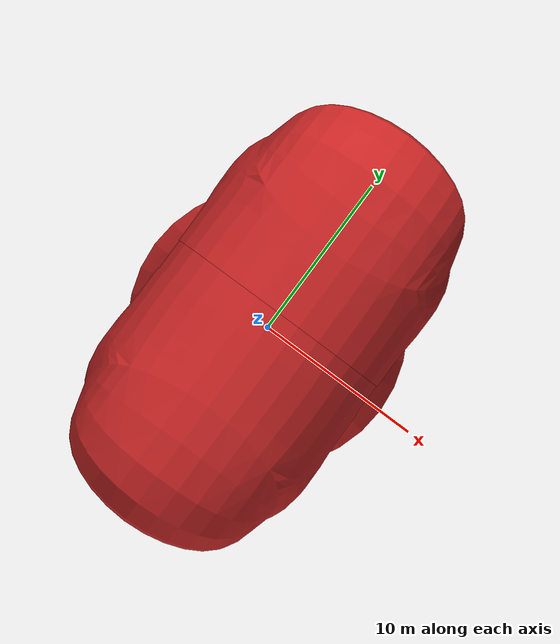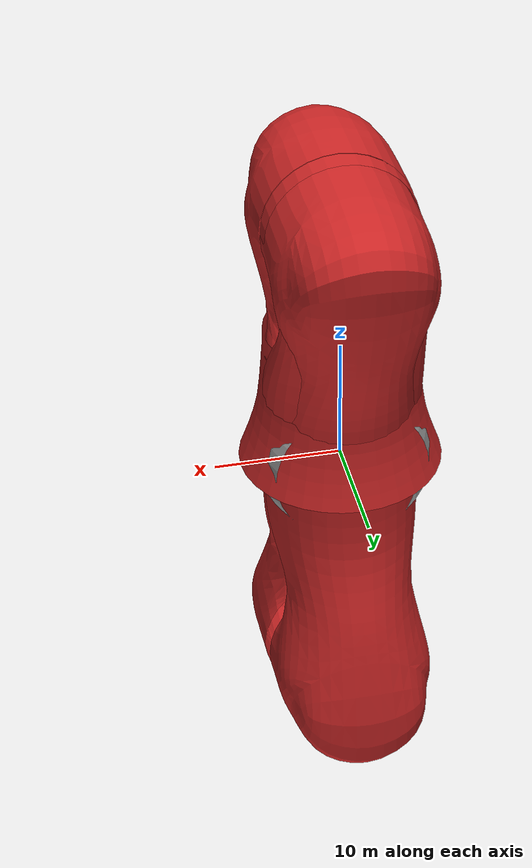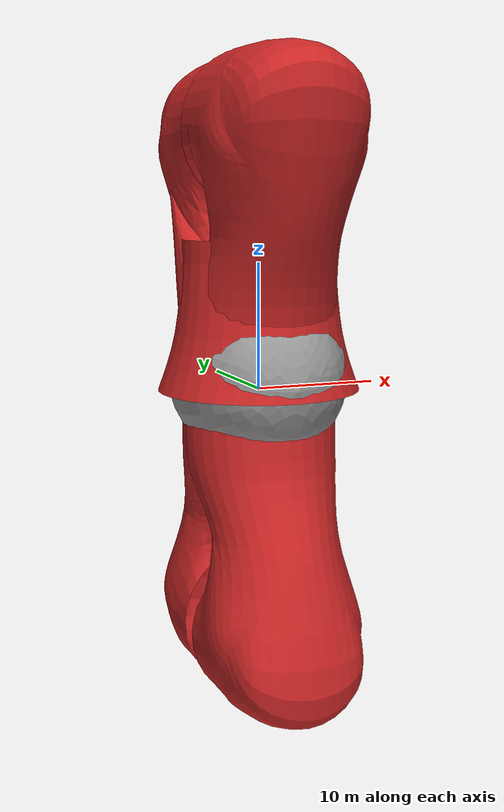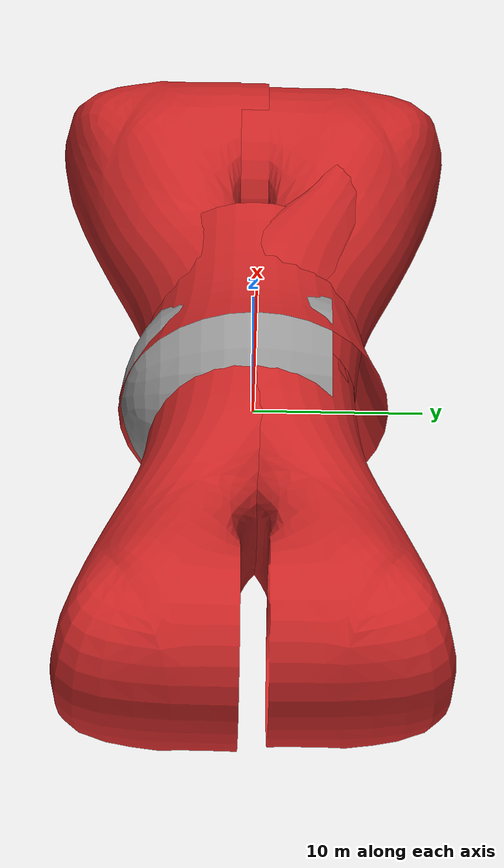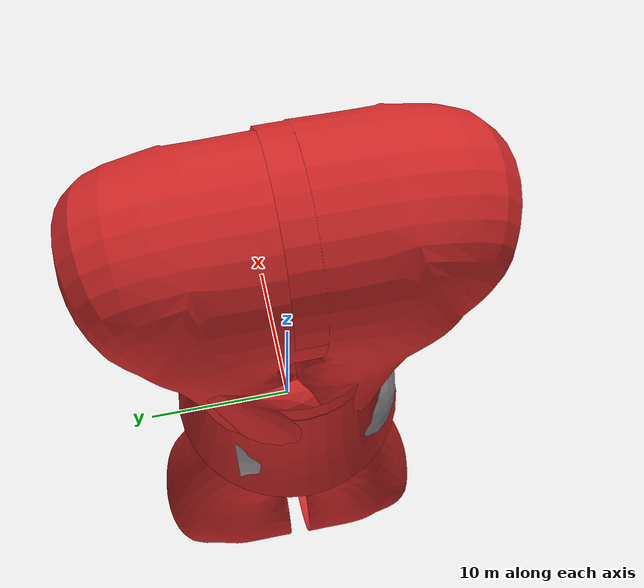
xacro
<?xml version="1.0"?>
<robot xmlns:xacro="http://www.ros.org/wiki/xacro" name="kuka_lwr_arm"
       xmlns:sensor="http://playerstage.sourceforge.net/gazebo/xmlschema/#sensor"
       xmlns:controller="http://playerstage.sourceforge.net/gazebo/xmlschema/#controller"
       xmlns:interface="http://playerstage.sourceforge.net/gazebo/xmlschema/#interface">

  <xacro:include filename="$(find iai_kuka_lwr4_description)/defs/util_defs.xml"/>

  <xacro:property name="arm_elem_base_mass" value="2.0"/>
  <xacro:property name="arm_elem_link_mass" value="2.0"/>
  <xacro:property name="arm_elem_ball_link_mass" value="2.0"/>
  <xacro:property name="arm_elem_end_link_mass" value="2.0"/>
  <xacro:property name="arm_elem_flange_link_mass" value="0.5"/>
  <xacro:property name="safety_controller_k_pos" value="100" />
  <xacro:property name="safety_controller_k_vel" value="2" />
  <xacro:property name="joint_damping" value="0.1" />

  <xacro:property name="arm_velocity_scale_factor" value="1"/>

  <xacro:macro name="kuka_lwr_arm" params="parent name *origin">

    <joint name="${parent}_${name}_arm_base_joint" type="fixed">
      <xacro:insert_block name="origin"/>
      <parent link="${parent}"/>
      <child link="calib_${name}_arm_base_link"/>
    </joint>

    <xacro:kuka_lwr_arm_unconnected name="${name}" />

  </xacro:macro>

  <xacro:macro name="kuka_lwr_arm_unconnected" params="name">

    <link name="calib_${name}_arm_base_link">
      <inertial>
        <mass value="${arm_elem_base_mass}"/>
        <origin xyz="0 0 0.055" rpy="0 0 0"/>
        <cylinder_inertia_def radius="0.06" length="0.11"
                              mass="${arm_elem_base_mass}"/>
      </inertial>

      <visual>
        <origin xyz="0 0 0" rpy="0 0 0"/>
        <geometry>
          <!-- for each mesh we have two versions, one Collada file with normals and colors, and one simpler STL. The collada file is in cm, and the STL in meters -->
          <mesh filename="package://iai_kuka_lwr4_description/meshes/arm_base.dae" scale="100 100 100"/>
	  <!--mesh filename="package://iai_kuka_lwr4_description/meshes/arm_base.stl" scale="1 1 1"-->
        </geometry>
        <material name="UniHB-Red"/>
      </visual>
      <collision>
        <origin xyz="0 0 0" rpy="0 0 0"/>
        <geometry>
          <mesh filename="package://iai_kuka_lwr4_description/meshes/convex/arm_base_convex.stl"/>
        </geometry>
      </collision>
    </link>

    <gazebo reference="calib_${name}_arm_base_link">
      <material value="kuka-lwr.material"/>
    </gazebo>

    <joint name="${name}_arm_0_joint" type="revolute">
      <origin xyz="0 0 0.11" rpy="0 0 0"/>
      <axis xyz="0 0 1"/>
      <limit lower="${-170 * M_PI / 180}" upper="${170 * M_PI / 180}"
             effort="204" velocity="${arm_velocity_scale_factor * 110 * M_PI / 180}" />
      <safety_controller soft_lower_limit="${-168 * M_PI / 180}"
                         soft_upper_limit="${168 * M_PI / 180}"
                         k_position="${safety_controller_k_pos}"
                         k_velocity="${safety_controller_k_vel}"/>
      <dynamics damping="${joint_damping}"/>
      <parent link="calib_${name}_arm_base_link"/>
      <child link="${name}_arm_1_link"/>
    </joint>

    <link name="${name}_arm_1_link">
      <inertial>
        <mass value="${arm_elem_link_mass}"/>
        <origin rpy="0 0 0" xyz="0 0 0.130"/>
        <cuboid_inertia_def length="0.12" width="0.06" height="0.260"
                            mass="${arm_elem_link_mass}"/>
      </inertial>

      <visual>
        <origin xyz="0 0 0" rpy="0 0 ${M_PI}"/>
        <geometry>
          <mesh filename="package://iai_kuka_lwr4_description/meshes/arm_segment_a.dae" scale="100 100 100"/>
          <!--mesh filename="package://iai_kuka_lwr4_description/meshes/arm_segment_a.stl" scale="1 1 1"/-->
        </geometry>
        <material name="UniHB-Red"/>
      </visual>

      <collision>
        <origin xyz="0 0 0" rpy="0 0 ${M_PI}"/>
        <geometry>
          <mesh filename="package://iai_kuka_lwr4_description/meshes/convex/arm_segment_a_convex.stl"/>
        </geometry>
      </collision>
    </link>

    <gazebo reference="${name}_arm_1_link">
      <material value="kuka-lwr.material"/>
    </gazebo>

    <transmission name="${name}_arm_0_trans" type="pr2_mechanism_model/SimpleTransmission">
      <actuator name="${name}_arm_0_motor"/>
      <joint name="${name}_arm_0_joint"/>
      <mechanicalReduction>1.0</mechanicalReduction>
    </transmission>

    <joint name="${name}_arm_1_joint" type="revolute">
      <origin xyz="0 0 0.20" rpy="0 0 0"/>
      <axis xyz="0 -1 0"/>
      <limit lower="${-120 * M_PI / 180}" upper="${120 * M_PI / 180}"
             effort="306" velocity="${arm_velocity_scale_factor * 110 * M_PI / 180}" />
      <safety_controller soft_lower_limit="${-118 * M_PI / 180}"
                         soft_upper_limit="${118 * M_PI / 180}"
                         k_position="${safety_controller_k_pos}"
                         k_velocity="${safety_controller_k_vel}"/>
      <dynamics damping="${joint_damping}"/>
      <parent link="${name}_arm_1_link"/>
      <child link="${name}_arm_2_link"/>
    </joint>

    <link name="${name}_arm_2_link">
      <inertial>
        <mass value="${arm_elem_link_mass}"/>
        <origin rpy="0 0 0" xyz="0 0.06 ${0.130 - 0.06}"/>
        <cuboid_inertia_def length="0.12" width="0.06" height="0.260"
                            mass="${arm_elem_link_mass}"/>
      </inertial>

      <visual>
        <origin xyz="0 0 0.2" rpy="${M_PI} 0 ${M_PI}"/>
        <geometry>
          <mesh filename="package://iai_kuka_lwr4_description/meshes/arm_segment_b.dae" scale="100 100 100"/>
          <!--mesh filename="package://iai_kuka_lwr4_description/meshes/arm_segment_b.stl" scale="1 1 1"/-->
        </geometry>
        <material name="UniHB-Red"/>
      </visual>

      <collision>
        <origin xyz="0 0 0.2" rpy="${M_PI} 0 ${M_PI}"/>
        <geometry>
          <mesh filename="package://iai_kuka_lwr4_description/meshes/convex/arm_segment_b_convex.stl"/>
        </geometry>
      </collision>
    </link>

    <gazebo reference="${name}_arm_2_link">
      <material value="kuka-lwr.material"/>
    </gazebo>

    <transmission name="${name}_arm_1_trans" type="pr2_mechanism_model/SimpleTransmission">
      <actuator name="${name}_arm_1_motor"/>
      <joint name="${name}_arm_1_joint"/>
      <mechanicalReduction>1.0</mechanicalReduction>
    </transmission>

    <joint name="${name}_arm_2_joint" type="revolute">
      <origin xyz="0 0 0.20" rpy="0 0 0"/>
      <axis xyz="0 0 1"/>
      <limit lower="${-170 * M_PI / 180}" upper="${170 * M_PI / 180}"
             effort="204" velocity="${arm_velocity_scale_factor * 130 * M_PI / 180}" />
      <safety_controller soft_lower_limit="${-168 * M_PI / 180}"
                         soft_upper_limit="${168 * M_PI / 180}"
                         k_position="${safety_controller_k_pos}"
                         k_velocity="${safety_controller_k_vel}"/>
      <dynamics damping="${joint_damping}"/>
      <parent link="${name}_arm_2_link"/>
      <child link="${name}_arm_3_link"/>
    </joint>

    <link name="${name}_arm_3_link">
      <inertial>
        <mass value="${arm_elem_link_mass}"/>
        <origin rpy="0 0 0" xyz="0 0.06 0.130"/>
        <cuboid_inertia_def length="0.12" width="0.06" height="0.260"
                            mass="${arm_elem_link_mass}"/>
      </inertial>

      <visual>
        <origin xyz="0 0 0" rpy="0 0 0"/>
        <geometry>
          <mesh filename="package://iai_kuka_lwr4_description/meshes/arm_segment_a.dae" scale="100 100 100"/>
          <!--mesh filename="package://iai_kuka_lwr4_description/meshes/arm_segment_a.stl" scale="1 1 1"/-->
        </geometry>
        <material name="UniHB-Red"/>
      </visual>

      <collision>
        <origin xyz="0 0 0" rpy="0 0 0"/>
        <geometry>
          <mesh filename="package://iai_kuka_lwr4_description/meshes/convex/arm_segment_a_convex.stl"/>
        </geometry>
      </collision>
    </link>

    <gazebo reference="${name}_arm_3_link">
      <material value="kuka-lwr.material"/>
    </gazebo>

    <transmission name="${name}_arm_2_trans" type="pr2_mechanism_model/SimpleTransmission">
      <actuator name="${name}_arm_2_motor"/>
      <joint name="${name}_arm_2_joint"/>
      <mechanicalReduction>1.0</mechanicalReduction>
    </transmission>

    <joint name="${name}_arm_3_joint" type="revolute">
      <origin xyz="0 0 0.20" rpy="0 0 0"/>
      <axis xyz="0 1 0"/>
      <limit lower="${-120 * M_PI / 180}" upper="${120 * M_PI / 180}"
             effort="306" velocity="${arm_velocity_scale_factor * 130 * M_PI / 180}" />
      <safety_controller soft_lower_limit="${-118 * M_PI / 180}"
                         soft_upper_limit="${118 * M_PI / 180}"
                         k_position="${safety_controller_k_pos}"
                         k_velocity="${safety_controller_k_vel}"/>
      <dynamics damping="${joint_damping}"/>
      <parent link="${name}_arm_3_link"/>
      <child link="${name}_arm_4_link"/>
    </joint>

    <link name="${name}_arm_4_link">
      <inertial>
        <mass value="${arm_elem_link_mass}"/>
        <origin rpy="0 0 0" xyz="0 -0.06 ${0.130 - 0.06}"/>
        <cuboid_inertia_def length="0.12" width="0.06" height="0.2600"
                            mass="${arm_elem_link_mass}"/>
      </inertial>

      <visual>
        <origin xyz="0 0 0.2" rpy="0 ${M_PI} ${M_PI}"/>
        <geometry>
          <mesh filename="package://iai_kuka_lwr4_description/meshes/arm_segment_b.dae" scale="100 100 100"/>
          <!--mesh filename="package://iai_kuka_lwr4_description/meshes/arm_segment_b.stl" scale="1 1 1"/-->
        </geometry>
        <material name="UniHB-Red"/>
      </visual>

      <collision>
        <origin xyz="0 0 0.2" rpy="0 ${M_PI} ${M_PI}"/>
        <geometry>
          <mesh filename="package://iai_kuka_lwr4_description/meshes/convex/arm_segment_b_convex.stl"/>
        </geometry>
      </collision>
    </link>

    <gazebo reference="${name}_arm_4_link">
      <material value="kuka-lwr.material"/>
    </gazebo>

    <transmission name="${name}_arm_3_trans" type="pr2_mechanism_model/SimpleTransmission">
      <actuator name="${name}_arm_3_motor"/>
      <joint name="${name}_arm_3_joint"/>
      <mechanicalReduction>1.0</mechanicalReduction>
    </transmission>

    <joint name="${name}_arm_4_joint" type="revolute">
      <origin xyz="0 0 0.20" rpy="0 0 0"/>
      <axis xyz="0 0 1"/>
      <limit lower="${-170 * M_PI / 180}" upper="${170 * M_PI / 180}"
             effort="204" velocity="${arm_velocity_scale_factor * 130 * M_PI / 180}" />
      <safety_controller soft_lower_limit="${-168 * M_PI / 180}"
                         soft_upper_limit="${168 * M_PI / 180}"
                         k_position="${safety_controller_k_pos}"
                         k_velocity="${safety_controller_k_vel}"/>
      <dynamics damping="${joint_damping}"/>
      <parent link="${name}_arm_4_link"/>
      <child link="${name}_arm_5_link"/>
    </joint>

    <link name="${name}_arm_5_link">
      <inertial>
        <mass value="${arm_elem_link_mass}"/>
        <origin rpy="0 0 0" xyz="0 0 0.124"/>
        <cuboid_inertia_def length="0.12" width="0.06" height="0.248"
                            mass="${arm_elem_link_mass}"/>
      </inertial>

      <visual>
        <origin xyz="0 0 0" rpy="0 0 ${M_PI}"/>
        <geometry name="${name}_arm_5_geom">
          <mesh filename="package://iai_kuka_lwr4_description/meshes/arm_segment_last.dae" scale="100 100 100"/>
          <!--mesh filename="package://iai_kuka_lwr4_description/meshes/arm_segment_last.stl" scale="1 1 1"/-->
        </geometry>
        <material name="UniHB-Red"/>
      </visual>

      <collision>
        <origin xyz="0 0 0" rpy="0 0 ${M_PI}"/>
        <geometry>
          <mesh filename="package://iai_kuka_lwr4_description/meshes/convex/arm_segment_last_convex.stl"/>
        </geometry>
      </collision>
    </link>

    <gazebo reference="${name}_arm_5_link">
      <material value="kuka-lwr.material"/>
    </gazebo>

    <transmission name="${name}_arm_4_trans" type="pr2_mechanism_model/SimpleTransmission">
      <actuator name="${name}_arm_4_motor"/>
      <joint name="${name}_arm_4_joint"/>
      <mechanicalReduction>1.0</mechanicalReduction>
    </transmission>

    <joint name="${name}_arm_5_joint" type="revolute">
      <origin xyz="0 0 0.19" rpy="0 0 0"/>
      <axis xyz="0 -1 0"/>
      <limit lower="${-120 * M_PI / 180}" upper="${120 * M_PI / 180}"
             effort="306" velocity="${arm_velocity_scale_factor * 180 * M_PI / 180}" />
      <safety_controller soft_lower_limit="${-118 * M_PI / 180}"
                         soft_upper_limit="${118 * M_PI / 180}"
                         k_position="${safety_controller_k_pos}"
                         k_velocity="${safety_controller_k_vel}"/>
      <dynamics damping="${joint_damping}"/>
      <parent link="${name}_arm_5_link"/>
      <child link="${name}_arm_6_link"/>
    </joint>

    <link name="${name}_arm_6_link">
      <inertial>
        <mass value="${arm_elem_ball_link_mass}"/>
        <origin rpy="0 0 0" xyz="0 0 0.0625"/>
        <cuboid_inertia_def length="0.125" width="0.125" height="0.125"
                            mass="${arm_elem_ball_link_mass}"/>
      </inertial>

      <visual>
        <origin xyz="0 0 0" rpy="0 0 ${M_PI}"/>
        <geometry>
          <mesh filename="package://iai_kuka_lwr4_description/meshes/arm_wrist.dae" scale="100 100 100"/>
          <!--mesh filename="package://iai_kuka_lwr4_description/meshes/arm_wrist.stl" scale="1 1 1"/-->
        </geometry>
        <material name="Grey"/>
      </visual>

      <collision>
        <origin xyz="0 0 0" rpy="0 0 ${M_PI}"/>
        <geometry>
          <mesh filename="package://iai_kuka_lwr4_description/meshes/convex/arm_wrist_convex.stl"/>
        </geometry>
      </collision>
    </link>

    <gazebo reference="${name}_arm_6_link">
      <material value="kuka-lwr.material"/>
    </gazebo>

    <transmission name="${name}_arm_5_trans" type="pr2_mechanism_model/SimpleTransmission">
      <actuator name="${name}_arm_5_motor"/>
      <joint name="${name}_arm_5_joint"/>
      <mechanicalReduction>1.0</mechanicalReduction>
    </transmission>

    <joint name="${name}_arm_6_joint" type="revolute">
      <origin xyz="0 0 0" rpy="0 0 0"/>
      <axis xyz="0 0 1"/>
      <limit lower="${-170 * M_PI / 180}" upper="${170 * M_PI / 180}"
             effort="204" velocity="${arm_velocity_scale_factor * 180 * M_PI / 180}" />
      <safety_controller soft_lower_limit="${-168 * M_PI / 180}"
                         soft_upper_limit="${168 * M_PI / 180}"
                         k_position="${safety_controller_k_pos}"
                         k_velocity="${safety_controller_k_vel}"/>
      <dynamics damping="${joint_damping}"/>
      <parent link="${name}_arm_6_link"/>
      <child link="${name}_arm_7_link"/>
    </joint>

    <link name="${name}_arm_7_link">
      <inertial>
        <mass value="${arm_elem_end_link_mass}"/>
        <origin xyz="0 0 0"/>
        <cuboid_inertia_def length="1" width="1" height="1"
                            mass="${arm_elem_end_link_mass}"/>
      </inertial>
      <visual>
        <origin xyz="0 0 0.078" rpy="0 0 0"/>
        <geometry>
          <mesh filename="package://iai_kuka_lwr4_description/meshes/arm_flanche.dae" scale="100 100 100"/>
          <!--mesh filename="package://iai_kuka_lwr4_description/meshes/arm_flanche.stl" scale="1 1 1"/-->
        </geometry>
        <material name="Black"/>
      </visual>
      <collision>
        <origin xyz="0 0 0.078" rpy="0 0 0"/>
        <geometry>
          <mesh filename="package://iai_kuka_lwr4_description/meshes/convex/arm_flanche_convex.stl"/>
        </geometry>
      </collision>
    </link>

    <gazebo reference="${name}_arm_7_link">
      <material value="kuka-lwr.material"/>
    </gazebo>

    <transmission name="${name}_arm_6_trans" type="pr2_mechanism_model/SimpleTransmission">
      <actuator name="${name}_arm_6_motor"/>
      <joint name="${name}_arm_6_joint"/>
      <mechanicalReduction>1.0</mechanicalReduction>
    </transmission>

    <!--arm_7_link has the same pose as the TCP defined in the DLR Beasty controller:
       Center of the potato, with z-coming out towards the flange, and y going towards joint #6 -->

    <joint name="${name}_arm_flange_joint" type="fixed">
      <origin xyz="0 0 0.078" rpy="0 0 0"/>
      <parent link="${name}_arm_7_link"/>
      <child link="${name}_arm_flange_link"/>
    </joint>

    <link name="${name}_arm_flange_link">
      <inertial>
        <mass value="${arm_elem_flange_link_mass}"/>
        <origin xyz="0 0 0" rpy="0 0 0"/>
        <cuboid_inertia_def length="1" width="1" height="1"
                            mass="${arm_elem_flange_link_mass}"/>
      </inertial>

    </link>

    <!-- Many Kuka LWR4s are equipped with a little plate to let the cables go out sideways -->
    <joint name="${name}_arm_cabling_adaptor_joint" type="fixed">
      <origin xyz="0 0 0.01" rpy="0 0 0"/>  <!-- This places the link at the end of the plate (frame_out) -->
      <parent link="${name}_arm_flange_link"/>
      <child link="${name}_arm_cabling_adaptor_link"/>
    </joint>

    <link name="${name}_arm_cabling_adaptor_link">
      <visual>
        <origin xyz="0 0 -0.005" rpy="0 0 0" />  <!-- The cylinder is placed at the center -->
        <geometry>
          <cylinder length="0.01" radius="0.0315"/>
        </geometry>
        <material name="Black"/>
      </visual>
    </link>

  </xacro:macro>

  <xacro:kuka_lwr_arm_unconnected name="kuka_arm" />

</robot>
